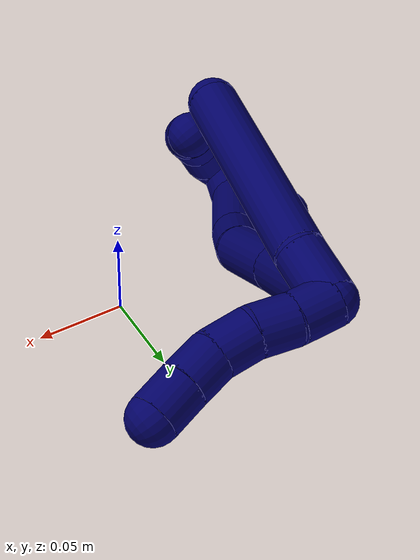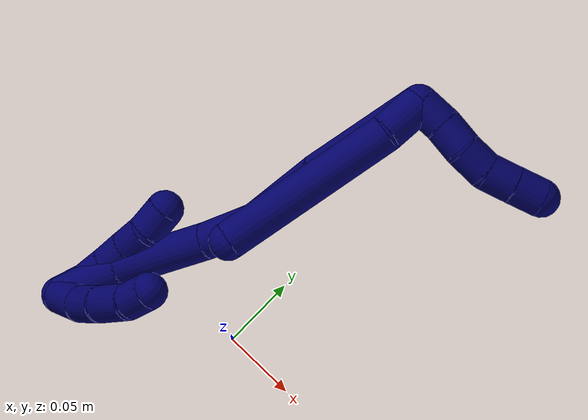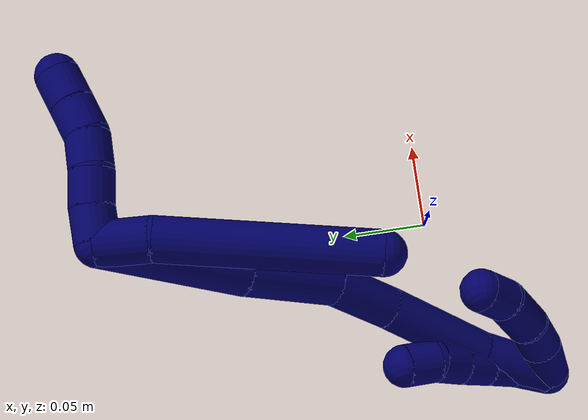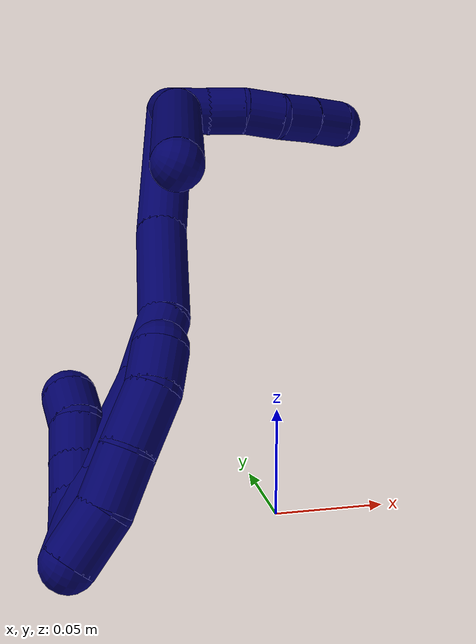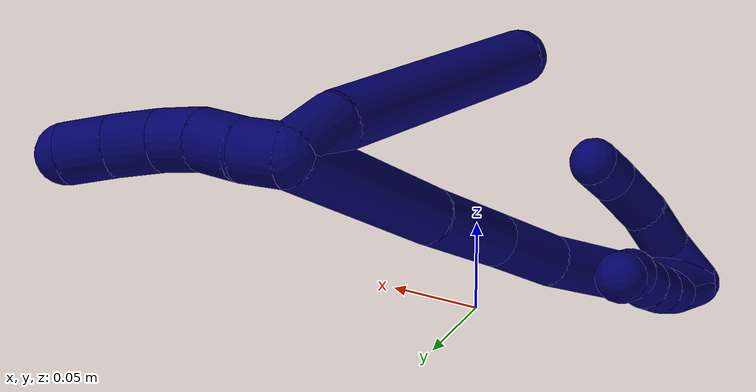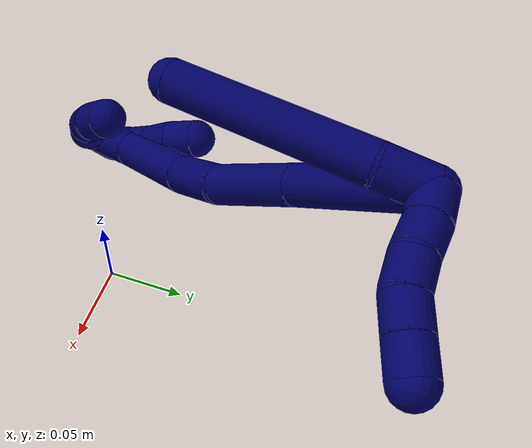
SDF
<sdf version="1.7">
 <world name="default">
  <model name="7">
   <static>0</static>
   <link name="7">
    <collision name="collision-cylinder-e_1_2_8">
     <pose>-0.001205 -0.014627 0.001697 1.45532 -0.081657 -0.072741</pose>
     <geometry><cylinder><radius>0.0125</radius><length>0.029549</length></cylinder></geometry>
     <surface>
      <friction><ode><mu>1.16</mu><mu2>1.16</mu2><slip1>0</slip1><slip2>0</slip2></ode></friction>
      <contact><ode><kp>1e+06</kp><kd>1</kd><max_vel>0</max_vel><min_depth>0.001</min_depth></ode></contact>
     </surface>
    </collision>
    <visual name="visual-cylinder-e_1_2_8">
     <pose>-0.001205 -0.014627 0.001697 1.45532 -0.081657 -0.072741</pose>
     <geometry><cylinder><radius>0.0125</radius><length>0.029549</length></cylinder></geometry>
     <material><ambient>0.003922 0 0.403922 1</ambient></material>
    </visual>
    <collision name="collision-cylinder-e_2_8_6">
     <pose>-0.019795 -0.086155 0.012734 1.40808 -0.292833 -0.249175</pose>
     <geometry><cylinder><radius>0.0125</radius><length>0.120451</length></cylinder></geometry>
     <surface>
      <friction><ode><mu>1.16</mu><mu2>1.16</mu2><slip1>0</slip1><slip2>0</slip2></ode></friction>
      <contact><ode><kp>1e+06</kp><kd>1</kd><max_vel>0</max_vel><min_depth>0.001</min_depth></ode></contact>
     </surface>
    </collision>
    <visual name="visual-cylinder-e_2_8_6">
     <pose>-0.019795 -0.086155 0.012734 1.40808 -0.292833 -0.249175</pose>
     <geometry><cylinder><radius>0.0125</radius><length>0.120451</length></cylinder></geometry>
     <material><ambient>0.003922 0 0.403922 1</ambient></material>
    </visual>
    <collision name="collision-cylinder-e_1_2_9">
     <pose>0.003958 -0.000315 -0.009178 3.10733 0.406918 2.97587</pose>
     <geometry><cylinder><radius>0.0125</radius><length>0.02</length></cylinder></geometry>
     <surface>
      <friction><ode><mu>1.16</mu><mu2>1.16</mu2><slip1>0</slip1><slip2>0</slip2></ode></friction>
      <contact><ode><kp>1e+06</kp><kd>1</kd><max_vel>0</max_vel><min_depth>0.001</min_depth></ode></contact>
     </surface>
    </collision>
    <visual name="visual-cylinder-e_1_2_9">
     <pose>0.003958 -0.000315 -0.009178 3.10733 0.406918 2.97587</pose>
     <geometry><cylinder><radius>0.0125</radius><length>0.02</length></cylinder></geometry>
     <material><ambient>0.003922 0 0.403922 1</ambient></material>
    </visual>
    <collision name="collision-cylinder-e_2_9_10">
     <pose>0.011939 -0.002375 -0.027343 2.94968 0.414041 2.28216</pose>
     <geometry><cylinder><radius>0.0125</radius><length>0.02</length></cylinder></geometry>
     <surface>
      <friction><ode><mu>1.16</mu><mu2>1.16</mu2><slip1>0</slip1><slip2>0</slip2></ode></friction>
      <contact><ode><kp>1e+06</kp><kd>1</kd><max_vel>0</max_vel><min_depth>0.001</min_depth></ode></contact>
     </surface>
    </collision>
    <visual name="visual-cylinder-e_2_9_10">
     <pose>0.011939 -0.002375 -0.027343 2.94968 0.414041 2.28216</pose>
     <geometry><cylinder><radius>0.0125</radius><length>0.02</length></cylinder></geometry>
     <material><ambient>0.003922 0 0.403922 1</ambient></material>
    </visual>
    <collision name="collision-cylinder-e_3_10_11">
     <pose>0.018563 -0.004345 -0.045983 3.11849 0.263157 2.96746</pose>
     <geometry><cylinder><radius>0.0125</radius><length>0.02</length></cylinder></geometry>
     <surface>
      <friction><ode><mu>1.16</mu><mu2>1.16</mu2><slip1>0</slip1><slip2>0</slip2></ode></friction>
      <contact><ode><kp>1e+06</kp><kd>1</kd><max_vel>0</max_vel><min_depth>0.001</min_depth></ode></contact>
     </surface>
    </collision>
    <visual name="visual-cylinder-e_3_10_11">
     <pose>0.018563 -0.004345 -0.045983 3.11849 0.263157 2.96746</pose>
     <geometry><cylinder><radius>0.0125</radius><length>0.02</length></cylinder></geometry>
     <material><ambient>0.003922 0 0.403922 1</ambient></material>
    </visual>
    <collision name="collision-cylinder-e_4_11_12">
     <pose>0.024212 -0.0018 -0.064749 -2.84671 0.309698 -1.62055</pose>
     <geometry><cylinder><radius>0.0125</radius><length>0.02</length></cylinder></geometry>
     <surface>
      <friction><ode><mu>1.16</mu><mu2>1.16</mu2><slip1>0</slip1><slip2>0</slip2></ode></friction>
      <contact><ode><kp>1e+06</kp><kd>1</kd><max_vel>0</max_vel><min_depth>0.001</min_depth></ode></contact>
     </surface>
    </collision>
    <visual name="visual-cylinder-e_4_11_12">
     <pose>0.024212 -0.0018 -0.064749 -2.84671 0.309698 -1.62055</pose>
     <geometry><cylinder><radius>0.0125</radius><length>0.02</length></cylinder></geometry>
     <material><ambient>0.003922 0 0.403922 1</ambient></material>
    </visual>
    <collision name="collision-cylinder-e_5_12_5">
     <pose>0.029969 0.003921 -0.083024 -2.82977 0.274348 -1.44128</pose>
     <geometry><cylinder><radius>0.0125</radius><length>0.02</length></cylinder></geometry>
     <surface>
      <friction><ode><mu>1.16</mu><mu2>1.16</mu2><slip1>0</slip1><slip2>0</slip2></ode></friction>
      <contact><ode><kp>1e+06</kp><kd>1</kd><max_vel>0</max_vel><min_depth>0.001</min_depth></ode></contact>
     </surface>
    </collision>
    <visual name="visual-cylinder-e_5_12_5">
     <pose>0.029969 0.003921 -0.083024 -2.82977 0.274348 -1.44128</pose>
     <geometry><cylinder><radius>0.0125</radius><length>0.02</length></cylinder></geometry>
     <material><ambient>0.003922 0 0.403922 1</ambient></material>
    </visual>
    <collision name="collision-cylinder-e_1_2_13">
     <pose>-0.03218 -0.030816 -0.002385 1.64805 -0.80555 -0.862813</pose>
     <geometry><cylinder><radius>0.0125</radius><length>0.089238</length></cylinder></geometry>
     <surface>
      <friction><ode><mu>1.16</mu><mu2>1.16</mu2><slip1>0</slip1><slip2>0</slip2></ode></friction>
      <contact><ode><kp>1e+06</kp><kd>1</kd><max_vel>0</max_vel><min_depth>0.001</min_depth></ode></contact>
     </surface>
    </collision>
    <visual name="visual-cylinder-e_1_2_13">
     <pose>-0.03218 -0.030816 -0.002385 1.64805 -0.80555 -0.862813</pose>
     <geometry><cylinder><radius>0.0125</radius><length>0.089238</length></cylinder></geometry>
     <material><ambient>0.003922 0 0.403922 1</ambient></material>
    </visual>
    <collision name="collision-cylinder-e_2_13_14">
     <pose>-0.083852 -0.082971 -0.007706 1.7075 -0.735541 -0.832247</pose>
     <geometry><cylinder><radius>0.0125</radius><length>0.058102</length></cylinder></geometry>
     <surface>
      <friction><ode><mu>1.16</mu><mu2>1.16</mu2><slip1>0</slip1><slip2>0</slip2></ode></friction>
      <contact><ode><kp>1e+06</kp><kd>1</kd><max_vel>0</max_vel><min_depth>0.001</min_depth></ode></contact>
     </surface>
    </collision>
    <visual name="visual-cylinder-e_2_13_14">
     <pose>-0.083852 -0.082971 -0.007706 1.7075 -0.735541 -0.832247</pose>
     <geometry><cylinder><radius>0.0125</radius><length>0.058102</length></cylinder></geometry>
     <material><ambient>0.003922 0 0.403922 1</ambient></material>
    </visual>
    <collision name="collision-cylinder-e_3_14_15">
     <pose>-0.118501 -0.116933 -0.008248 1.3834 -0.867662 -0.73271</pose>
     <geometry><cylinder><radius>0.0125</radius><length>0.039736</length></cylinder></geometry>
     <surface>
      <friction><ode><mu>1.16</mu><mu2>1.16</mu2><slip1>0</slip1><slip2>0</slip2></ode></friction>
      <contact><ode><kp>1e+06</kp><kd>1</kd><max_vel>0</max_vel><min_depth>0.001</min_depth></ode></contact>
     </surface>
    </collision>
    <visual name="visual-cylinder-e_3_14_15">
     <pose>-0.118501 -0.116933 -0.008248 1.3834 -0.867662 -0.73271</pose>
     <geometry><cylinder><radius>0.0125</radius><length>0.039736</length></cylinder></geometry>
     <material><ambient>0.003922 0 0.403922 1</ambient></material>
    </visual>
    <collision name="collision-cylinder-e_4_15_16">
     <pose>-0.157254 -0.151785 0.001751 1.24114 -0.787561 -0.577357</pose>
     <geometry><cylinder><radius>0.0125</radius><length>0.066601</length></cylinder></geometry>
     <surface>
      <friction><ode><mu>1.16</mu><mu2>1.16</mu2><slip1>0</slip1><slip2>0</slip2></ode></friction>
      <contact><ode><kp>1e+06</kp><kd>1</kd><max_vel>0</max_vel><min_depth>0.001</min_depth></ode></contact>
     </surface>
    </collision>
    <visual name="visual-cylinder-e_4_15_16">
     <pose>-0.157254 -0.151785 0.001751 1.24114 -0.787561 -0.577357</pose>
     <geometry><cylinder><radius>0.0125</radius><length>0.066601</length></cylinder></geometry>
     <material><ambient>0.003922 0 0.403922 1</ambient></material>
    </visual>
    <collision name="collision-cylinder-e_5_16_1">
     <pose>-0.194981 -0.191872 0.013599 1.33754 -0.656069 -0.525459</pose>
     <geometry><cylinder><radius>0.0125</radius><length>0.046324</length></cylinder></geometry>
     <surface>
      <friction><ode><mu>1.16</mu><mu2>1.16</mu2><slip1>0</slip1><slip2>0</slip2></ode></friction>
      <contact><ode><kp>1e+06</kp><kd>1</kd><max_vel>0</max_vel><min_depth>0.001</min_depth></ode></contact>
     </surface>
    </collision>
    <visual name="visual-cylinder-e_5_16_1">
     <pose>-0.194981 -0.191872 0.013599 1.33754 -0.656069 -0.525459</pose>
     <geometry><cylinder><radius>0.0125</radius><length>0.046324</length></cylinder></geometry>
     <material><ambient>0.003922 0 0.403922 1</ambient></material>
    </visual>
    <collision name="collision-cylinder-e_1_1_17">
     <pose>-0.204835 -0.200977 0.015576 -1.82411 0.441688 -0.56456</pose>
     <geometry><cylinder><radius>0.0125</radius><length>0.02</length></cylinder></geometry>
     <surface>
      <friction><ode><mu>1.16</mu><mu2>1.16</mu2><slip1>0</slip1><slip2>0</slip2></ode></friction>
      <contact><ode><kp>1e+06</kp><kd>1</kd><max_vel>0</max_vel><min_depth>0.001</min_depth></ode></contact>
     </surface>
    </collision>
    <visual name="visual-cylinder-e_1_1_17">
     <pose>-0.204835 -0.200977 0.015576 -1.82411 0.441688 -0.56456</pose>
     <geometry><cylinder><radius>0.0125</radius><length>0.02</length></cylinder></geometry>
     <material><ambient>0.003922 0 0.403922 1</ambient></material>
    </visual>
    <collision name="collision-cylinder-e_2_17_18">
     <pose>-0.194669 -0.184163 0.013854 -1.50351 0.629958 -0.591357</pose>
     <geometry><cylinder><radius>0.0125</radius><length>0.02</length></cylinder></geometry>
     <surface>
      <friction><ode><mu>1.16</mu><mu2>1.16</mu2><slip1>0</slip1><slip2>0</slip2></ode></friction>
      <contact><ode><kp>1e+06</kp><kd>1</kd><max_vel>0</max_vel><min_depth>0.001</min_depth></ode></contact>
     </surface>
    </collision>
    <visual name="visual-cylinder-e_2_17_18">
     <pose>-0.194669 -0.184163 0.013854 -1.50351 0.629958 -0.591357</pose>
     <geometry><cylinder><radius>0.0125</radius><length>0.02</length></cylinder></geometry>
     <material><ambient>0.003922 0 0.403922 1</ambient></material>
    </visual>
    <collision name="collision-cylinder-e_3_18_19">
     <pose>-0.18223 -0.168649 0.015661 -1.40284 0.713905 -0.610358</pose>
     <geometry><cylinder><radius>0.0125</radius><length>0.02</length></cylinder></geometry>
     <surface>
      <friction><ode><mu>1.16</mu><mu2>1.16</mu2><slip1>0</slip1><slip2>0</slip2></ode></friction>
      <contact><ode><kp>1e+06</kp><kd>1</kd><max_vel>0</max_vel><min_depth>0.001</min_depth></ode></contact>
     </surface>
    </collision>
    <visual name="visual-cylinder-e_3_18_19">
     <pose>-0.18223 -0.168649 0.015661 -1.40284 0.713905 -0.610358</pose>
     <geometry><cylinder><radius>0.0125</radius><length>0.02</length></cylinder></geometry>
     <material><ambient>0.003922 0 0.403922 1</ambient></material>
    </visual>
    <collision name="collision-cylinder-e_4_19_20">
     <pose>-0.168335 -0.154596 0.018487 -1.33828 0.825195 -0.666528</pose>
     <geometry><cylinder><radius>0.0125</radius><length>0.02</length></cylinder></geometry>
     <surface>
      <friction><ode><mu>1.16</mu><mu2>1.16</mu2><slip1>0</slip1><slip2>0</slip2></ode></friction>
      <contact><ode><kp>1e+06</kp><kd>1</kd><max_vel>0</max_vel><min_depth>0.001</min_depth></ode></contact>
     </surface>
    </collision>
    <visual name="visual-cylinder-e_4_19_20">
     <pose>-0.168335 -0.154596 0.018487 -1.33828 0.825195 -0.666528</pose>
     <geometry><cylinder><radius>0.0125</radius><length>0.02</length></cylinder></geometry>
     <material><ambient>0.003922 0 0.403922 1</ambient></material>
    </visual>
    <collision name="collision-cylinder-e_5_20_4">
     <pose>-0.156369 -0.139348 0.022027 -1.34613 0.480188 -0.385513</pose>
     <geometry><cylinder><radius>0.0125</radius><length>0.02</length></cylinder></geometry>
     <surface>
      <friction><ode><mu>1.16</mu><mu2>1.16</mu2><slip1>0</slip1><slip2>0</slip2></ode></friction>
      <contact><ode><kp>1e+06</kp><kd>1</kd><max_vel>0</max_vel><min_depth>0.001</min_depth></ode></contact>
     </surface>
    </collision>
    <visual name="visual-cylinder-e_5_20_4">
     <pose>-0.156369 -0.139348 0.022027 -1.34613 0.480188 -0.385513</pose>
     <geometry><cylinder><radius>0.0125</radius><length>0.02</length></cylinder></geometry>
     <material><ambient>0.003922 0 0.403922 1</ambient></material>
    </visual>
    <collision name="collision-cylinder-e_1_1_21">
     <pose>-0.196509 -0.209407 0.015035 -3.02739 1.35024 -2.99903</pose>
     <geometry><cylinder><radius>0.0125</radius><length>0.025828</length></cylinder></geometry>
     <surface>
      <friction><ode><mu>1.16</mu><mu2>1.16</mu2><slip1>0</slip1><slip2>0</slip2></ode></friction>
      <contact><ode><kp>1e+06</kp><kd>1</kd><max_vel>0</max_vel><min_depth>0.001</min_depth></ode></contact>
     </surface>
    </collision>
    <visual name="visual-cylinder-e_1_1_21">
     <pose>-0.196509 -0.209407 0.015035 -3.02739 1.35024 -2.99903</pose>
     <geometry><cylinder><radius>0.0125</radius><length>0.025828</length></cylinder></geometry>
     <material><ambient>0.003922 0 0.403922 1</ambient></material>
    </visual>
    <collision name="collision-cylinder-e_2_21_22">
     <pose>-0.171319 -0.207077 0.011836 -1.76379 1.4097 -1.6032</pose>
     <geometry><cylinder><radius>0.0125</radius><length>0.025507</length></cylinder></geometry>
     <surface>
      <friction><ode><mu>1.16</mu><mu2>1.16</mu2><slip1>0</slip1><slip2>0</slip2></ode></friction>
      <contact><ode><kp>1e+06</kp><kd>1</kd><max_vel>0</max_vel><min_depth>0.001</min_depth></ode></contact>
     </surface>
    </collision>
    <visual name="visual-cylinder-e_2_21_22">
     <pose>-0.171319 -0.207077 0.011836 -1.76379 1.4097 -1.6032</pose>
     <geometry><cylinder><radius>0.0125</radius><length>0.025507</length></cylinder></geometry>
     <material><ambient>0.003922 0 0.403922 1</ambient></material>
    </visual>
    <collision name="collision-cylinder-e_3_22_23">
     <pose>-0.145308 -0.200669 0.010003 -1.88717 1.23864 -1.55415</pose>
     <geometry><cylinder><radius>0.0125</radius><length>0.028399</length></cylinder></geometry>
     <surface>
      <friction><ode><mu>1.16</mu><mu2>1.16</mu2><slip1>0</slip1><slip2>0</slip2></ode></friction>
      <contact><ode><kp>1e+06</kp><kd>1</kd><max_vel>0</max_vel><min_depth>0.001</min_depth></ode></contact>
     </surface>
    </collision>
    <visual name="visual-cylinder-e_3_22_23">
     <pose>-0.145308 -0.200669 0.010003 -1.88717 1.23864 -1.55415</pose>
     <geometry><cylinder><radius>0.0125</radius><length>0.028399</length></cylinder></geometry>
     <material><ambient>0.003922 0 0.403922 1</ambient></material>
    </visual>
    <collision name="collision-cylinder-e_4_23_3">
     <pose>-0.123415 -0.190715 0.008891 -1.51175 0.989588 -0.941018</pose>
     <geometry><cylinder><radius>0.0125</radius><length>0.020266</length></cylinder></geometry>
     <surface>
      <friction><ode><mu>1.16</mu><mu2>1.16</mu2><slip1>0</slip1><slip2>0</slip2></ode></friction>
      <contact><ode><kp>1e+06</kp><kd>1</kd><max_vel>0</max_vel><min_depth>0.001</min_depth></ode></contact>
     </surface>
    </collision>
    <visual name="visual-cylinder-e_4_23_3">
     <pose>-0.123415 -0.190715 0.008891 -1.51175 0.989588 -0.941018</pose>
     <geometry><cylinder><radius>0.0125</radius><length>0.020266</length></cylinder></geometry>
     <material><ambient>0.003922 0 0.403922 1</ambient></material>
    </visual>
    <collision name="collision-sphere-3">
     <pose>-0.114946 -0.185161 0.009219 0 -0 0</pose>
     <geometry><sphere><radius>0.0125</radius></sphere></geometry>
     <surface>
      <friction><ode><mu>1.16</mu><mu2>1.16</mu2><slip1>0</slip1><slip2>0</slip2></ode></friction>
      <contact><ode><kp>1e+06</kp><kd>1</kd><max_vel>0</max_vel><min_depth>0.001</min_depth></ode></contact>
     </surface>
    </collision>
    <visual name="visual-sphere-3">
     <pose>-0.114946 -0.185161 0.009219 0 -0 0</pose>
     <geometry><sphere><radius>0.0125</radius></sphere></geometry>
     <material><ambient>0.003922 0 0.403922 1</ambient></material>
    </visual>
    <collision name="collision-sphere-23">
     <pose>-0.131884 -0.196269 0.008562 0 -0 0</pose>
     <geometry><sphere><radius>0.0125</radius></sphere></geometry>
     <surface>
      <friction><ode><mu>1.16</mu><mu2>1.16</mu2><slip1>0</slip1><slip2>0</slip2></ode></friction>
      <contact><ode><kp>1e+06</kp><kd>1</kd><max_vel>0</max_vel><min_depth>0.001</min_depth></ode></contact>
     </surface>
    </collision>
    <visual name="visual-sphere-23">
     <pose>-0.131884 -0.196269 0.008562 0 -0 0</pose>
     <geometry><sphere><radius>0.0125</radius></sphere></geometry>
     <material><ambient>0.003922 0 0.403922 1</ambient></material>
    </visual>
    <collision name="collision-sphere-22">
     <pose>-0.158731 -0.205069 0.011443 0 -0 0</pose>
     <geometry><sphere><radius>0.0125</radius></sphere></geometry>
     <surface>
      <friction><ode><mu>1.16</mu><mu2>1.16</mu2><slip1>0</slip1><slip2>0</slip2></ode></friction>
      <contact><ode><kp>1e+06</kp><kd>1</kd><max_vel>0</max_vel><min_depth>0.001</min_depth></ode></contact>
     </surface>
    </collision>
    <visual name="visual-sphere-22">
     <pose>-0.158731 -0.205069 0.011443 0 -0 0</pose>
     <geometry><sphere><radius>0.0125</radius></sphere></geometry>
     <material><ambient>0.003922 0 0.403922 1</ambient></material>
    </visual>
    <collision name="collision-sphere-21">
     <pose>-0.183908 -0.209085 0.012228 0 -0 0</pose>
     <geometry><sphere><radius>0.0125</radius></sphere></geometry>
     <surface>
      <friction><ode><mu>1.16</mu><mu2>1.16</mu2><slip1>0</slip1><slip2>0</slip2></ode></friction>
      <contact><ode><kp>1e+06</kp><kd>1</kd><max_vel>0</max_vel><min_depth>0.001</min_depth></ode></contact>
     </surface>
    </collision>
    <visual name="visual-sphere-21">
     <pose>-0.183908 -0.209085 0.012228 0 -0 0</pose>
     <geometry><sphere><radius>0.0125</radius></sphere></geometry>
     <material><ambient>0.003922 0 0.403922 1</ambient></material>
    </visual>
    <collision name="collision-sphere-4">
     <pose>-0.15175 -0.130702 0.024002 0 -0 0</pose>
     <geometry><sphere><radius>0.0125</radius></sphere></geometry>
     <surface>
      <friction><ode><mu>1.16</mu><mu2>1.16</mu2><slip1>0</slip1><slip2>0</slip2></ode></friction>
      <contact><ode><kp>1e+06</kp><kd>1</kd><max_vel>0</max_vel><min_depth>0.001</min_depth></ode></contact>
     </surface>
    </collision>
    <visual name="visual-sphere-4">
     <pose>-0.15175 -0.130702 0.024002 0 -0 0</pose>
     <geometry><sphere><radius>0.0125</radius></sphere></geometry>
     <material><ambient>0.003922 0 0.403922 1</ambient></material>
    </visual>
    <collision name="collision-sphere-20">
     <pose>-0.160989 -0.147994 0.020051 0 -0 0</pose>
     <geometry><sphere><radius>0.0125</radius></sphere></geometry>
     <surface>
      <friction><ode><mu>1.16</mu><mu2>1.16</mu2><slip1>0</slip1><slip2>0</slip2></ode></friction>
      <contact><ode><kp>1e+06</kp><kd>1</kd><max_vel>0</max_vel><min_depth>0.001</min_depth></ode></contact>
     </surface>
    </collision>
    <visual name="visual-sphere-20">
     <pose>-0.160989 -0.147994 0.020051 0 -0 0</pose>
     <geometry><sphere><radius>0.0125</radius></sphere></geometry>
     <material><ambient>0.003922 0 0.403922 1</ambient></material>
    </visual>
    <collision name="collision-sphere-11">
     <pose>0.021164 -0.004568 -0.055636 0 -0 0</pose>
     <geometry><sphere><radius>0.0125</radius></sphere></geometry>
     <surface>
      <friction><ode><mu>1.16</mu><mu2>1.16</mu2><slip1>0</slip1><slip2>0</slip2></ode></friction>
      <contact><ode><kp>1e+06</kp><kd>1</kd><max_vel>0</max_vel><min_depth>0.001</min_depth></ode></contact>
     </surface>
    </collision>
    <visual name="visual-sphere-11">
     <pose>0.021164 -0.004568 -0.055636 0 -0 0</pose>
     <geometry><sphere><radius>0.0125</radius></sphere></geometry>
     <material><ambient>0.003922 0 0.403922 1</ambient></material>
    </visual>
    <collision name="collision-sphere-10">
     <pose>0.015962 -0.004122 -0.03633 0 -0 0</pose>
     <geometry><sphere><radius>0.0125</radius></sphere></geometry>
     <surface>
      <friction><ode><mu>1.16</mu><mu2>1.16</mu2><slip1>0</slip1><slip2>0</slip2></ode></friction>
      <contact><ode><kp>1e+06</kp><kd>1</kd><max_vel>0</max_vel><min_depth>0.001</min_depth></ode></contact>
     </surface>
    </collision>
    <visual name="visual-sphere-10">
     <pose>0.015962 -0.004122 -0.03633 0 -0 0</pose>
     <geometry><sphere><radius>0.0125</radius></sphere></geometry>
     <material><ambient>0.003922 0 0.403922 1</ambient></material>
    </visual>
    <collision name="collision-sphere-6">
     <pose>-0.03718 -0.143055 0.022075 0 -0 0</pose>
     <geometry><sphere><radius>0.0125</radius></sphere></geometry>
     <surface>
      <friction><ode><mu>1.16</mu><mu2>1.16</mu2><slip1>0</slip1><slip2>0</slip2></ode></friction>
      <contact><ode><kp>1e+06</kp><kd>1</kd><max_vel>0</max_vel><min_depth>0.001</min_depth></ode></contact>
     </surface>
    </collision>
    <visual name="visual-sphere-6">
     <pose>-0.03718 -0.143055 0.022075 0 -0 0</pose>
     <geometry><sphere><radius>0.0125</radius></sphere></geometry>
     <material><ambient>0.003922 0 0.403922 1</ambient></material>
    </visual>
    <collision name="collision-sphere-9">
     <pose>0.007916 -0.000629 -0.018356 0 -0 0</pose>
     <geometry><sphere><radius>0.0125</radius></sphere></geometry>
     <surface>
      <friction><ode><mu>1.16</mu><mu2>1.16</mu2><slip1>0</slip1><slip2>0</slip2></ode></friction>
      <contact><ode><kp>1e+06</kp><kd>1</kd><max_vel>0</max_vel><min_depth>0.001</min_depth></ode></contact>
     </surface>
    </collision>
    <visual name="visual-sphere-9">
     <pose>0.007916 -0.000629 -0.018356 0 -0 0</pose>
     <geometry><sphere><radius>0.0125</radius></sphere></geometry>
     <material><ambient>0.003922 0 0.403922 1</ambient></material>
    </visual>
    <collision name="collision-sphere-2">
     <geometry><sphere><radius>0.0125</radius></sphere></geometry>
     <surface>
      <friction><ode><mu>1.16</mu><mu2>1.16</mu2><slip1>0</slip1><slip2>0</slip2></ode></friction>
      <contact><ode><kp>1e+06</kp><kd>1</kd><max_vel>0</max_vel><min_depth>0.001</min_depth></ode></contact>
     </surface>
    </collision>
    <visual name="visual-sphere-2">
     <geometry><sphere><radius>0.0125</radius></sphere></geometry>
     <material><ambient>0.003922 0 0.403922 1</ambient></material>
    </visual>
    <collision name="collision-sphere-19">
     <pose>-0.175682 -0.161197 0.016924 0 -0 0</pose>
     <geometry><sphere><radius>0.0125</radius></sphere></geometry>
     <surface>
      <friction><ode><mu>1.16</mu><mu2>1.16</mu2><slip1>0</slip1><slip2>0</slip2></ode></friction>
      <contact><ode><kp>1e+06</kp><kd>1</kd><max_vel>0</max_vel><min_depth>0.001</min_depth></ode></contact>
     </surface>
    </collision>
    <visual name="visual-sphere-19">
     <pose>-0.175682 -0.161197 0.016924 0 -0 0</pose>
     <geometry><sphere><radius>0.0125</radius></sphere></geometry>
     <material><ambient>0.003922 0 0.403922 1</ambient></material>
    </visual>
    <collision name="collision-sphere-8">
     <pose>-0.00241 -0.029255 0.003393 0 -0 0</pose>
     <geometry><sphere><radius>0.0125</radius></sphere></geometry>
     <surface>
      <friction><ode><mu>1.16</mu><mu2>1.16</mu2><slip1>0</slip1><slip2>0</slip2></ode></friction>
      <contact><ode><kp>1e+06</kp><kd>1</kd><max_vel>0</max_vel><min_depth>0.001</min_depth></ode></contact>
     </surface>
    </collision>
    <visual name="visual-sphere-8">
     <pose>-0.00241 -0.029255 0.003393 0 -0 0</pose>
     <geometry><sphere><radius>0.0125</radius></sphere></geometry>
     <material><ambient>0.003922 0 0.403922 1</ambient></material>
    </visual>
    <collision name="collision-sphere-12">
     <pose>0.02726 0.000968 -0.073863 0 -0 0</pose>
     <geometry><sphere><radius>0.0125</radius></sphere></geometry>
     <surface>
      <friction><ode><mu>1.16</mu><mu2>1.16</mu2><slip1>0</slip1><slip2>0</slip2></ode></friction>
      <contact><ode><kp>1e+06</kp><kd>1</kd><max_vel>0</max_vel><min_depth>0.001</min_depth></ode></contact>
     </surface>
    </collision>
    <visual name="visual-sphere-12">
     <pose>0.02726 0.000968 -0.073863 0 -0 0</pose>
     <geometry><sphere><radius>0.0125</radius></sphere></geometry>
     <material><ambient>0.003922 0 0.403922 1</ambient></material>
    </visual>
    <collision name="collision-sphere-5">
     <pose>0.032678 0.006875 -0.092186 0 -0 0</pose>
     <geometry><sphere><radius>0.0125</radius></sphere></geometry>
     <surface>
      <friction><ode><mu>1.16</mu><mu2>1.16</mu2><slip1>0</slip1><slip2>0</slip2></ode></friction>
      <contact><ode><kp>1e+06</kp><kd>1</kd><max_vel>0</max_vel><min_depth>0.001</min_depth></ode></contact>
     </surface>
    </collision>
    <visual name="visual-sphere-5">
     <pose>0.032678 0.006875 -0.092186 0 -0 0</pose>
     <geometry><sphere><radius>0.0125</radius></sphere></geometry>
     <material><ambient>0.003922 0 0.403922 1</ambient></material>
    </visual>
    <collision name="collision-sphere-13">
     <pose>-0.064359 -0.061632 -0.004771 0 -0 0</pose>
     <geometry><sphere><radius>0.0125</radius></sphere></geometry>
     <surface>
      <friction><ode><mu>1.16</mu><mu2>1.16</mu2><slip1>0</slip1><slip2>0</slip2></ode></friction>
      <contact><ode><kp>1e+06</kp><kd>1</kd><max_vel>0</max_vel><min_depth>0.001</min_depth></ode></contact>
     </surface>
    </collision>
    <visual name="visual-sphere-13">
     <pose>-0.064359 -0.061632 -0.004771 0 -0 0</pose>
     <geometry><sphere><radius>0.0125</radius></sphere></geometry>
     <material><ambient>0.003922 0 0.403922 1</ambient></material>
    </visual>
    <collision name="collision-sphere-14">
     <pose>-0.103345 -0.104311 -0.010642 0 -0 0</pose>
     <geometry><sphere><radius>0.0125</radius></sphere></geometry>
     <surface>
      <friction><ode><mu>1.16</mu><mu2>1.16</mu2><slip1>0</slip1><slip2>0</slip2></ode></friction>
      <contact><ode><kp>1e+06</kp><kd>1</kd><max_vel>0</max_vel><min_depth>0.001</min_depth></ode></contact>
     </surface>
    </collision>
    <visual name="visual-sphere-14">
     <pose>-0.103345 -0.104311 -0.010642 0 -0 0</pose>
     <geometry><sphere><radius>0.0125</radius></sphere></geometry>
     <material><ambient>0.003922 0 0.403922 1</ambient></material>
    </visual>
    <collision name="collision-sphere-15">
     <pose>-0.133656 -0.129555 -0.005855 0 -0 0</pose>
     <geometry><sphere><radius>0.0125</radius></sphere></geometry>
     <surface>
      <friction><ode><mu>1.16</mu><mu2>1.16</mu2><slip1>0</slip1><slip2>0</slip2></ode></friction>
      <contact><ode><kp>1e+06</kp><kd>1</kd><max_vel>0</max_vel><min_depth>0.001</min_depth></ode></contact>
     </surface>
    </collision>
    <visual name="visual-sphere-15">
     <pose>-0.133656 -0.129555 -0.005855 0 -0 0</pose>
     <geometry><sphere><radius>0.0125</radius></sphere></geometry>
     <material><ambient>0.003922 0 0.403922 1</ambient></material>
    </visual>
    <collision name="collision-sphere-16">
     <pose>-0.180852 -0.174016 0.009357 0 -0 0</pose>
     <geometry><sphere><radius>0.0125</radius></sphere></geometry>
     <surface>
      <friction><ode><mu>1.16</mu><mu2>1.16</mu2><slip1>0</slip1><slip2>0</slip2></ode></friction>
      <contact><ode><kp>1e+06</kp><kd>1</kd><max_vel>0</max_vel><min_depth>0.001</min_depth></ode></contact>
     </surface>
    </collision>
    <visual name="visual-sphere-16">
     <pose>-0.180852 -0.174016 0.009357 0 -0 0</pose>
     <geometry><sphere><radius>0.0125</radius></sphere></geometry>
     <material><ambient>0.003922 0 0.403922 1</ambient></material>
    </visual>
    <collision name="collision-sphere-1">
     <pose>-0.20911 -0.209729 0.017842 0 -0 0</pose>
     <geometry><sphere><radius>0.0125</radius></sphere></geometry>
     <surface>
      <friction><ode><mu>1.16</mu><mu2>1.16</mu2><slip1>0</slip1><slip2>0</slip2></ode></friction>
      <contact><ode><kp>1e+06</kp><kd>1</kd><max_vel>0</max_vel><min_depth>0.001</min_depth></ode></contact>
     </surface>
    </collision>
    <visual name="visual-sphere-1">
     <pose>-0.20911 -0.209729 0.017842 0 -0 0</pose>
     <geometry><sphere><radius>0.0125</radius></sphere></geometry>
     <material><ambient>0.003922 0 0.403922 1</ambient></material>
    </visual>
    <collision name="collision-sphere-18">
     <pose>-0.188778 -0.176101 0.014397 0 -0 0</pose>
     <geometry><sphere><radius>0.0125</radius></sphere></geometry>
     <surface>
      <friction><ode><mu>1.16</mu><mu2>1.16</mu2><slip1>0</slip1><slip2>0</slip2></ode></friction>
      <contact><ode><kp>1e+06</kp><kd>1</kd><max_vel>0</max_vel><min_depth>0.001</min_depth></ode></contact>
     </surface>
    </collision>
    <visual name="visual-sphere-18">
     <pose>-0.188778 -0.176101 0.014397 0 -0 0</pose>
     <geometry><sphere><radius>0.0125</radius></sphere></geometry>
     <material><ambient>0.003922 0 0.403922 1</ambient></material>
    </visual>
    <collision name="collision-sphere-17">
     <pose>-0.20056 -0.192225 0.013311 0 -0 0</pose>
     <geometry><sphere><radius>0.0125</radius></sphere></geometry>
     <surface>
      <friction><ode><mu>1.16</mu><mu2>1.16</mu2><slip1>0</slip1><slip2>0</slip2></ode></friction>
      <contact><ode><kp>1e+06</kp><kd>1</kd><max_vel>0</max_vel><min_depth>0.001</min_depth></ode></contact>
     </surface>
    </collision>
    <visual name="visual-sphere-17">
     <pose>-0.20056 -0.192225 0.013311 0 -0 0</pose>
     <geometry><sphere><radius>0.0125</radius></sphere></geometry>
     <material><ambient>0.003922 0 0.403922 1</ambient></material>
    </visual>
    <inertial>
     <pose>-0.089076 -0.105775 -0.000529 0 -0 0</pose>
     <mass>0.75</mass>
     <inertia><ixx>0.0001</ixx><ixy>0</ixy><ixz>0</ixz><iyy>-7e-06</iyy><iyz>0</iyz><izz>0.000337</izz></inertia>
    </inertial>
   </link>
   <pose>-0.011253 0.18449 0.154871 -0.365111 -1.08555 0.398231</pose>
  </model>
 </world>
</sdf>
